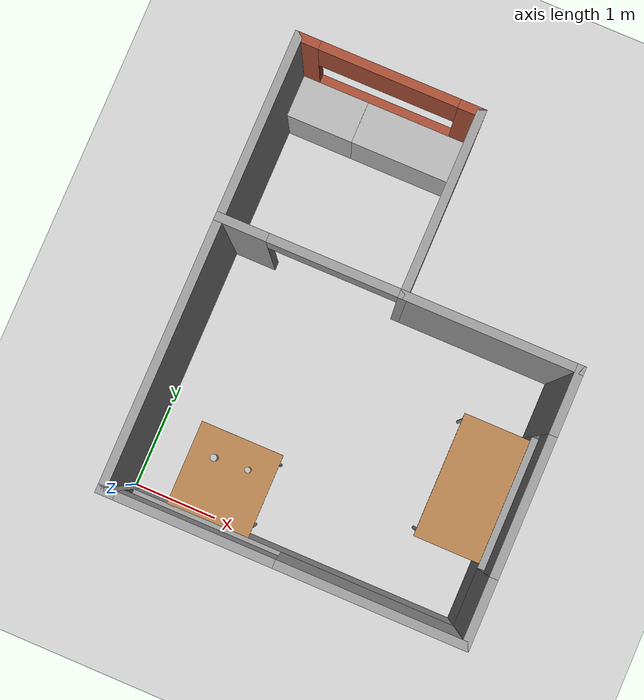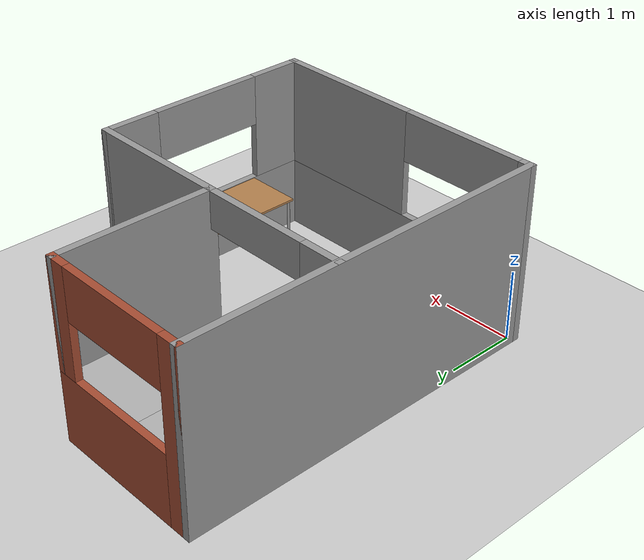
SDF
<sdf version="1.6">
 <world name="default">
  <light name="sun" type="directional">
   <pose>0 0 10 0 -0 0</pose>
   <diffuse>0.8 0.8 0.8 1</diffuse>
   <specular>0.2 0.2 0.2 1</specular>
   <attenuation>
    <range>1000</range>
    <constant>0.9</constant>
    <linear>0.01</linear>
    <quadratic>0.001</quadratic>
   </attenuation>
   <direction>-0.5 0.1 -0.9</direction>
  </light>
  <model name="ground_plane">
   <static>1</static>
   <link name="link">
    <collision name="collision">
     <geometry><plane><normal>0 0 1</normal><size>100 100</size></plane></geometry>
     <surface>
      <contact><collide_bitmask>65535</collide_bitmask></contact>
      <friction><ode><mu>100</mu><mu2>50</mu2></ode></friction>
     </surface>
    </collision>
    <visual name="visual">
     <cast_shadows>0</cast_shadows>
     <geometry><plane><normal>0 0 1</normal><size>100 100</size></plane></geometry>
     <material>
      <script><uri>file://media/materials/scripts/gazebo.material</uri><name>Gazebo/Grey</name></script>
     </material>
    </visual>
   </link>
  </model>
  <gravity>0 0 -9.8</gravity>
  <magnetic_field>6e-06 2.3e-05 -4.2e-05</magnetic_field>
  <atmosphere type="adiabatic"/>
  <physics name="default_physics" default="0" type="ode">
   <max_step_size>0.001</max_step_size>
   <real_time_factor>0</real_time_factor>
   <real_time_update_rate>1000</real_time_update_rate>
  </physics>
  <scene><ambient>0.4 0.4 0.4 1</ambient><background>0.7 0.7 0.7 1</background><shadows>1</shadows></scene>
  <audio><device>default</device></audio>
  <spherical_coordinates>
   <surface_model>EARTH_WGS84</surface_model>
   <latitude_deg>0</latitude_deg>
   <longitude_deg>0</longitude_deg>
   <elevation>0</elevation>
   <heading_deg>0</heading_deg>
  </spherical_coordinates>
  <model name="table">
   <static>1</static>
   <link name="link">
    <collision name="surface">
     <pose>0 0 1 0 -0 0</pose>
     <geometry><box><size>1.5 0.8 0.03</size></box></geometry>
     <surface><friction><ode><mu>0.6</mu><mu2>0.6</mu2></ode></friction></surface>
    </collision>
    <visual name="visual1">
     <pose>0 0 1 0 -0 0</pose>
     <geometry><box><size>1.5 0.8 0.03</size></box></geometry>
     <material>
      <script><uri>file://media/materials/scripts/gazebo.material</uri><name>Gazebo/Wood</name></script>
     </material>
    </visual>
    <collision name="front_left_leg">
     <pose>0.68 0.38 0.5 0 -0 0</pose>
     <geometry><cylinder><radius>0.02</radius><length>1</length></cylinder></geometry>
    </collision>
    <visual name="front_left_leg">
     <pose>0.68 0.38 0.5 0 -0 0</pose>
     <geometry><cylinder><radius>0.02</radius><length>1</length></cylinder></geometry>
     <material>
      <script><uri>file://media/materials/scripts/gazebo.material</uri><name>Gazebo/Grey</name></script>
     </material>
    </visual>
    <collision name="front_right_leg">
     <pose>0.68 -0.38 0.5 0 -0 0</pose>
     <geometry><cylinder><radius>0.02</radius><length>1</length></cylinder></geometry>
    </collision>
    <visual name="front_right_leg">
     <pose>0.68 -0.38 0.5 0 -0 0</pose>
     <geometry><cylinder><radius>0.02</radius><length>1</length></cylinder></geometry>
     <material>
      <script><uri>file://media/materials/scripts/gazebo.material</uri><name>Gazebo/Grey</name></script>
     </material>
    </visual>
    <collision name="back_right_leg">
     <pose>-0.68 -0.38 0.5 0 -0 0</pose>
     <geometry><cylinder><radius>0.02</radius><length>1</length></cylinder></geometry>
    </collision>
    <visual name="back_right_leg">
     <pose>-0.68 -0.38 0.5 0 -0 0</pose>
     <geometry><cylinder><radius>0.02</radius><length>1</length></cylinder></geometry>
     <material>
      <script><uri>file://media/materials/scripts/gazebo.material</uri><name>Gazebo/Grey</name></script>
     </material>
    </visual>
    <collision name="back_left_leg">
     <pose>-0.68 0.38 0.5 0 -0 0</pose>
     <geometry><cylinder><radius>0.02</radius><length>1</length></cylinder></geometry>
    </collision>
    <visual name="back_left_leg">
     <pose>-0.68 0.38 0.5 0 -0 0</pose>
     <geometry><cylinder><radius>0.02</radius><length>1</length></cylinder></geometry>
     <material>
      <script><uri>file://media/materials/scripts/gazebo.material</uri><name>Gazebo/Grey</name></script>
     </material>
    </visual>
   </link>
   <pose>3.6 1.5 -0.025 0 -0 1.5708</pose>
  </model>
  <model name="table_1m">
   <static>1</static>
   <link name="link">
    <collision name="surface">
     <pose>0 0 1.01 0 -0 0</pose>
     <geometry><box><size>1 1.01 0.03</size></box></geometry>
    </collision>
    <visual name="visual1">
     <pose>0 0 1.01 0 -0 0</pose>
     <geometry><box><size>1 1.01 0.03</size></box></geometry>
     <material>
      <script><uri>file://media/materials/scripts/gazebo.material</uri><name>Gazebo/Wood</name></script>
     </material>
    </visual>
    <collision name="front_left_leg">
     <pose>0.48 0.38 0.5005 0 -0 0</pose>
     <geometry><cylinder><radius>0.02</radius><length>1.01</length></cylinder></geometry>
    </collision>
    <visual name="front_left_leg">
     <pose>0.48 0.38 0.5005 0 -0 0</pose>
     <geometry><cylinder><radius>0.02</radius><length>1.01</length></cylinder></geometry>
     <material>
      <script><uri>file://media/materials/scripts/gazebo.material</uri><name>Gazebo/Grey</name></script>
     </material>
    </visual>
    <collision name="front_right_leg">
     <pose>0.48 -0.38 0.5005 0 -0 0</pose>
     <geometry><cylinder><radius>0.02</radius><length>1.01</length></cylinder></geometry>
    </collision>
    <visual name="front_right_leg">
     <pose>0.48 -0.38 0.5005 0 -0 0</pose>
     <geometry><cylinder><radius>0.02</radius><length>1.01</length></cylinder></geometry>
     <material>
      <script><uri>file://media/materials/scripts/gazebo.material</uri><name>Gazebo/Grey</name></script>
     </material>
    </visual>
    <collision name="back_right_leg">
     <pose>-0.48 -0.38 0.5005 0 -0 0</pose>
     <geometry><cylinder><radius>0.02</radius><length>1.01</length></cylinder></geometry>
    </collision>
    <visual name="back_right_leg">
     <pose>-0.48 -0.38 0.5005 0 -0 0</pose>
     <geometry><cylinder><radius>0.02</radius><length>1.01</length></cylinder></geometry>
     <material>
      <script><uri>file://media/materials/scripts/gazebo.material</uri><name>Gazebo/Grey</name></script>
     </material>
    </visual>
    <collision name="back_left_leg">
     <pose>-0.48 0.38 0.5005 0 -0 0</pose>
     <geometry><cylinder><radius>0.02</radius><length>1.01</length></cylinder></geometry>
    </collision>
    <visual name="back_left_leg">
     <pose>-0.48 0.38 0.5005 0 -0 0</pose>
     <geometry><cylinder><radius>0.02</radius><length>1.01</length></cylinder></geometry>
     <material>
      <script><uri>file://media/materials/scripts/gazebo.material</uri><name>Gazebo/Grey</name></script>
     </material>
    </visual>
    <velocity_decay><linear>0</linear><angular>0</angular></velocity_decay>
   </link>
   <pose>1 0.5 -0.025 0 -0 0</pose>
  </model>
  <light name="user_point_light_0" type="point">
   <pose>1.30174 1.84081 1 0 -0 0</pose>
   <diffuse>0.5 0.5 0.5 1</diffuse>
   <specular>0.1 0.1 0.1 1</specular>
   <attenuation>
    <range>20</range>
    <constant>0.5</constant>
    <linear>0.01</linear>
    <quadratic>0.001</quadratic>
   </attenuation>
   <cast_shadows>0</cast_shadows>
   <direction>0 0 -1</direction>
  </light>
  <light name="user_point_light_1" type="point">
   <pose>0.591099 4.29155 1 0 -0 0</pose>
   <diffuse>0.5 0.5 0.5 1</diffuse>
   <specular>0.1 0.1 0.1 1</specular>
   <attenuation>
    <range>20</range>
    <constant>0.5</constant>
    <linear>0.01</linear>
    <quadratic>0.001</quadratic>
   </attenuation>
   <cast_shadows>0</cast_shadows>
   <direction>0 0 -1</direction>
  </light>
  <model name="thesis_world">
   <pose>2 2.55 0 0 -0 0</pose>
   <link name="Wall_0">
    <pose>-0 -2.6 0 0 -0 0</pose>
    <visual name="Wall_0_Visual_0">
     <pose>-2 0 1.25 0 -0 0</pose>
     <geometry><box><size>0.2 0.1 2.5</size></box></geometry>
     <material>
      <script><uri>file://media/materials/scripts/gazebo.material</uri><name>Gazebo/Grey</name></script>
      <ambient>1 1 1 1</ambient>
     </material>
     <meta><layer>0</layer></meta>
    </visual>
    <collision name="Wall_0_Collision_0">
     <geometry><box><size>0.2 0.1 2.5</size></box></geometry>
     <pose>-2 0 1.25 0 -0 0</pose>
    </collision>
    <visual name="Wall_0_Visual_1">
     <pose>0.1 0 0.5 0 -0 0</pose>
     <geometry><box><size>4 0.1 1</size></box></geometry>
     <material>
      <script><uri>file://media/materials/scripts/gazebo.material</uri><name>Gazebo/Grey</name></script>
      <ambient>1 1 1 1</ambient>
     </material>
     <meta><layer>0</layer></meta>
    </visual>
    <collision name="Wall_0_Collision_1">
     <geometry><box><size>4 0.1 1</size></box></geometry>
     <pose>0.1 0 0.5 0 -0 0</pose>
    </collision>
    <visual name="Wall_0_Visual_2">
     <pose>1 0 1.75 0 -0 0</pose>
     <geometry><box><size>2.2 0.1 1.5</size></box></geometry>
     <material>
      <script><uri>file://media/materials/scripts/gazebo.material</uri><name>Gazebo/Grey</name></script>
      <ambient>1 1 1 1</ambient>
     </material>
     <meta><layer>0</layer></meta>
    </visual>
    <collision name="Wall_0_Collision_2">
     <geometry><box><size>2.2 0.1 1.5</size></box></geometry>
     <pose>1 0 1.75 0 -0 0</pose>
    </collision>
    <visual name="Wall_0_Visual_3">
     <pose>-1 0 2.15 0 -0 0</pose>
     <geometry><box><size>1.8 0.1 0.7</size></box></geometry>
     <material>
      <script><uri>file://media/materials/scripts/gazebo.material</uri><name>Gazebo/Grey</name></script>
      <ambient>1 1 1 1</ambient>
     </material>
     <meta><layer>0</layer></meta>
    </visual>
    <collision name="Wall_0_Collision_3">
     <geometry><box><size>1.8 0.1 0.7</size></box></geometry>
     <pose>-1 0 2.15 0 -0 0</pose>
    </collision>
   </link>
   <link name="Wall_11">
    <collision name="Wall_11_Collision">
     <geometry><box><size>2.1 0.1 2.5</size></box></geometry>
     <pose>0 0 1.25 0 -0 0</pose>
    </collision>
    <visual name="Wall_11_Visual">
     <pose>0 0 1.25 0 -0 0</pose>
     <geometry><box><size>2.1 0.1 2.5</size></box></geometry>
     <material>
      <script><uri>file://media/materials/scripts/gazebo.material</uri><name>Gazebo/Grey</name></script>
      <ambient>1 1 1 1</ambient>
     </material>
     <meta><layer>0</layer></meta>
    </visual>
    <pose>1.05 0.5 0 0 -0 0</pose>
   </link>
   <link name="Wall_15">
    <pose>2.05 -1.05 0 0 -0 -1.5708</pose>
    <visual name="Wall_15_Visual_0">
     <pose>-1.2 0 1.25 0 -0 0</pose>
     <geometry><box><size>0.8 0.1 2.5</size></box></geometry>
     <material>
      <script><uri>file://media/materials/scripts/gazebo.material</uri><name>Gazebo/Grey</name></script>
      <ambient>1 1 1 1</ambient>
     </material>
     <meta><layer>0</layer></meta>
    </visual>
    <collision name="Wall_15_Collision_0">
     <geometry><box><size>0.8 0.1 2.5</size></box></geometry>
     <pose>-1.2 0 1.25 0 -0 0</pose>
    </collision>
    <visual name="Wall_15_Visual_1">
     <pose>0.4 0 0.5 0 -0 0</pose>
     <geometry><box><size>2.4 0.1 1</size></box></geometry>
     <material>
      <script><uri>file://media/materials/scripts/gazebo.material</uri><name>Gazebo/Grey</name></script>
      <ambient>1 1 1 1</ambient>
     </material>
     <meta><layer>0</layer></meta>
    </visual>
    <collision name="Wall_15_Collision_1">
     <geometry><box><size>2.4 0.1 1</size></box></geometry>
     <pose>0.4 0 0.5 0 -0 0</pose>
    </collision>
    <visual name="Wall_15_Visual_2">
     <pose>1.2 0 1.75 0 -0 0</pose>
     <geometry><box><size>0.8 0.1 1.5</size></box></geometry>
     <material>
      <script><uri>file://media/materials/scripts/gazebo.material</uri><name>Gazebo/Grey</name></script>
      <ambient>1 1 1 1</ambient>
     </material>
     <meta><layer>0</layer></meta>
    </visual>
    <collision name="Wall_15_Collision_2">
     <geometry><box><size>0.8 0.1 1.5</size></box></geometry>
     <pose>1.2 0 1.75 0 -0 0</pose>
    </collision>
    <visual name="Wall_15_Visual_3">
     <pose>0 0 2.15 0 -0 0</pose>
     <geometry><box><size>1.6 0.1 0.7</size></box></geometry>
     <material>
      <script><uri>file://media/materials/scripts/gazebo.material</uri><name>Gazebo/Grey</name></script>
      <ambient>1 1 1 1</ambient>
     </material>
     <meta><layer>0</layer></meta>
    </visual>
    <collision name="Wall_15_Collision_3">
     <geometry><box><size>1.6 0.1 0.7</size></box></geometry>
     <pose>0 0 2.15 0 -0 0</pose>
    </collision>
   </link>
   <link name="Wall_2">
    <collision name="Wall_2_Collision">
     <geometry><box><size>5.3 0.1 2.5</size></box></geometry>
     <pose>0 0 1.25 0 -0 0</pose>
    </collision>
    <visual name="Wall_2_Visual">
     <pose>0 0 1.25 0 -0 0</pose>
     <geometry><box><size>5.3 0.1 2.5</size></box></geometry>
     <material>
      <script><uri>file://media/materials/scripts/gazebo.material</uri><name>Gazebo/Grey</name></script>
      <ambient>1 1 1 1</ambient>
     </material>
     <meta><layer>0</layer></meta>
    </visual>
    <pose>-2.05 0 0 0 -0 1.5708</pose>
   </link>
   <link name="Wall_4">
    <pose>-1 2.6 0 0 -0 0</pose>
    <visual name="Wall_4_Visual_0">
     <pose>-0.95 0 1.25 0 -0 0</pose>
     <geometry><box><size>0.3 0.1 2.5</size></box></geometry>
     <material>
      <script><uri>file://media/materials/scripts/gazebo.material</uri><name>Gazebo/Bricks</name></script>
      <ambient>1 1 1 1</ambient>
     </material>
     <meta><layer>0</layer></meta>
    </visual>
    <collision name="Wall_4_Collision_0">
     <geometry><box><size>0.3 0.1 2.5</size></box></geometry>
     <pose>-0.95 0 1.25 0 -0 0</pose>
    </collision>
    <visual name="Wall_4_Visual_1">
     <pose>0.15 0 0.5 0 -0 0</pose>
     <geometry><box><size>1.9 0.1 1</size></box></geometry>
     <material>
      <script><uri>file://media/materials/scripts/gazebo.material</uri><name>Gazebo/Bricks</name></script>
      <ambient>1 1 1 1</ambient>
     </material>
     <meta><layer>0</layer></meta>
    </visual>
    <collision name="Wall_4_Collision_1">
     <geometry><box><size>1.9 0.1 1</size></box></geometry>
     <pose>0.15 0 0.5 0 -0 0</pose>
    </collision>
    <visual name="Wall_4_Visual_2">
     <pose>0.95 0 1.75 0 -0 0</pose>
     <geometry><box><size>0.3 0.1 1.5</size></box></geometry>
     <material>
      <script><uri>file://media/materials/scripts/gazebo.material</uri><name>Gazebo/Bricks</name></script>
      <ambient>1 1 1 1</ambient>
     </material>
     <meta><layer>0</layer></meta>
    </visual>
    <collision name="Wall_4_Collision_2">
     <geometry><box><size>0.3 0.1 1.5</size></box></geometry>
     <pose>0.95 0 1.75 0 -0 0</pose>
    </collision>
    <visual name="Wall_4_Visual_3">
     <pose>0 0 2.15 0 -0 0</pose>
     <geometry><box><size>1.6 0.1 0.7</size></box></geometry>
     <material>
      <script><uri>file://media/materials/scripts/gazebo.material</uri><name>Gazebo/Bricks</name></script>
      <ambient>1 1 1 1</ambient>
     </material>
     <meta><layer>0</layer></meta>
    </visual>
    <collision name="Wall_4_Collision_3">
     <geometry><box><size>1.6 0.1 0.7</size></box></geometry>
     <pose>0 0 2.15 0 -0 0</pose>
    </collision>
   </link>
   <link name="Wall_6">
    <collision name="Wall_6_Collision">
     <geometry><box><size>2.2 0.1 2.5</size></box></geometry>
     <pose>0 0 1.25 0 -0 0</pose>
    </collision>
    <visual name="Wall_6_Visual">
     <pose>0 0 1.25 0 -0 0</pose>
     <geometry><box><size>2.2 0.1 2.5</size></box></geometry>
     <material>
      <script><uri>file://media/materials/scripts/gazebo.material</uri><name>Gazebo/Grey</name></script>
      <ambient>1 1 1 1</ambient>
     </material>
     <meta><layer>0</layer></meta>
    </visual>
    <pose>0.05 1.55 0 0 -0 -1.5708</pose>
   </link>
   <link name="Wall_8">
    <pose>-1 0.5 0 0 -0 3.14159</pose>
    <visual name="Wall_8_Visual_0">
     <pose>-1.05 0 1.25 0 -0 0</pose>
     <geometry><box><size>0.1 0.1 2.5</size></box></geometry>
     <material>
      <script><uri>file://media/materials/scripts/gazebo.material</uri><name>Gazebo/Grey</name></script>
      <ambient>1 1 1 1</ambient>
     </material>
     <meta><layer>0</layer></meta>
    </visual>
    <collision name="Wall_8_Collision_0">
     <geometry><box><size>0.1 0.1 2.5</size></box></geometry>
     <pose>-1.05 0 1.25 0 -0 0</pose>
    </collision>
    <visual name="Wall_8_Visual_1">
     <pose>0.8 0 1.25 0 -0 0</pose>
     <geometry><box><size>0.6 0.1 2.5</size></box></geometry>
     <material>
      <script><uri>file://media/materials/scripts/gazebo.material</uri><name>Gazebo/Grey</name></script>
      <ambient>1 1 1 1</ambient>
     </material>
     <meta><layer>0</layer></meta>
    </visual>
    <collision name="Wall_8_Collision_1">
     <geometry><box><size>0.6 0.1 2.5</size></box></geometry>
     <pose>0.8 0 1.25 0 -0 0</pose>
    </collision>
    <visual name="Wall_8_Visual_2">
     <pose>-0.25 0 2.25 0 -0 0</pose>
     <geometry><box><size>1.5 0.1 0.5</size></box></geometry>
     <material>
      <script><uri>file://media/materials/scripts/gazebo.material</uri><name>Gazebo/Grey</name></script>
      <ambient>1 1 1 1</ambient>
     </material>
     <meta><layer>0</layer></meta>
    </visual>
    <collision name="Wall_8_Collision_2">
     <geometry><box><size>1.5 0.1 0.5</size></box></geometry>
     <pose>-0.25 0 2.25 0 -0 0</pose>
    </collision>
   </link>
   <static>1</static>
  </model>
  <model name="sink">
   <link name="link">
    <inertial>
     <mass>1</mass>
     <inertia>
      <ixx>0.166667</ixx>
      <ixy>0</ixy>
      <ixz>0</ixz>
      <iyy>0.166667</iyy>
      <iyz>0</iyz>
      <izz>0.166667</izz>
     </inertia>
    </inertial>
    <visual name="visual">
     <geometry><box><size>0.8 0.5 1</size></box></geometry>
     <material>
      <script>
       <uri>model://sink/materials/scripts</uri>
       <uri>model://sink/materials/textures</uri>
       <name>sinkMat/Diffuse</name>
      </script>
      <shader type="vertex"><normal_map>__default__</normal_map></shader>
      <ambient>0.3 0.3 0.3 1</ambient>
      <diffuse>0.7 0.7 0.7 1</diffuse>
      <specular>0.01 0.01 0.01 1</specular>
      <emissive>0 0 0 1</emissive>
     </material>
    </visual>
    <collision name="collision">
     <geometry><box><size>0.8 0.5 1</size></box></geometry>
     <surface>
      <friction>
       <ode><mu>1</mu><mu2>1</mu2><fdir1>0 0 0</fdir1><slip1>0</slip1><slip2>0</slip2></ode>
       <torsional>
        <coefficient>1</coefficient>
        <patch_radius>0</patch_radius>
        <surface_radius>0</surface_radius>
        <use_patch_radius>1</use_patch_radius>
        <ode><slip>0</slip></ode>
       </torsional>
      </friction>
      <bounce><restitution_coefficient>0</restitution_coefficient><threshold>1e+06</threshold></bounce>
      <contact>
       <collide_without_contact>0</collide_without_contact>
       <collide_without_contact_bitmask>1</collide_without_contact_bitmask>
       <collide_bitmask>1</collide_bitmask>
       <ode>
        <soft_cfm>0</soft_cfm>
        <soft_erp>0.2</soft_erp>
        <kp>1e+13</kp>
        <kd>1</kd>
        <max_vel>0.01</max_vel>
        <min_depth>0</min_depth>
       </ode>
       <bullet>
        <split_impulse>1</split_impulse>
        <split_impulse_penetration_threshold>-0.01</split_impulse_penetration_threshold>
        <soft_cfm>0</soft_cfm>
        <soft_erp>0.2</soft_erp>
        <kp>1e+13</kp>
        <kd>1</kd>
       </bullet>
      </contact>
     </surface>
    </collision>
   </link>
   <static>1</static>
   <pose>0.405273 4.85028 0.5 0 -0 0</pose>
  </model>
  <model name="counter">
   <link name="link">
    <inertial>
     <mass>1</mass>
     <inertia>
      <ixx>0.166667</ixx>
      <ixy>0</ixy>
      <ixz>0</ixz>
      <iyy>0.166667</iyy>
      <iyz>0</iyz>
      <izz>0.166667</izz>
     </inertia>
    </inertial>
    <visual name="visual">
     <geometry><box><size>1.19 0.5 1</size></box></geometry>
     <material>
      <script>
       <uri>model://counter/materials/scripts</uri>
       <uri>model://counter/materials/textures</uri>
       <name>counterMat/Diffuse</name>
      </script>
      <shader type="vertex"><normal_map>__default__</normal_map></shader>
      <ambient>0.3 0.3 0.3 1</ambient>
      <diffuse>0.7 0.7 0.7 1</diffuse>
      <specular>0.01 0.01 0.01 1</specular>
      <emissive>0 0 0 1</emissive>
     </material>
    </visual>
    <collision name="collision">
     <geometry><box><size>1.19 0.5 1</size></box></geometry>
     <surface>
      <friction>
       <ode><mu>1</mu><mu2>1</mu2><fdir1>0 0 0</fdir1><slip1>0</slip1><slip2>0</slip2></ode>
       <torsional>
        <coefficient>1</coefficient>
        <patch_radius>0</patch_radius>
        <surface_radius>0</surface_radius>
        <use_patch_radius>1</use_patch_radius>
        <ode><slip>0</slip></ode>
       </torsional>
      </friction>
      <bounce><restitution_coefficient>0</restitution_coefficient><threshold>1e+06</threshold></bounce>
      <contact>
       <collide_without_contact>0</collide_without_contact>
       <collide_without_contact_bitmask>1</collide_without_contact_bitmask>
       <collide_bitmask>1</collide_bitmask>
       <ode>
        <soft_cfm>0</soft_cfm>
        <soft_erp>0.2</soft_erp>
        <kp>1e+13</kp>
        <kd>1</kd>
        <max_vel>0.01</max_vel>
        <min_depth>0</min_depth>
       </ode>
       <bullet>
        <split_impulse>1</split_impulse>
        <split_impulse_penetration_threshold>-0.01</split_impulse_penetration_threshold>
        <soft_cfm>0</soft_cfm>
        <soft_erp>0.2</soft_erp>
        <kp>1e+13</kp>
        <kd>1</kd>
       </bullet>
      </contact>
     </surface>
    </collision>
   </link>
   <static>1</static>
   <pose>1.40051 4.85028 0.5 0 -0 0</pose>
  </model>
  <model name="biscuits_pack">
   <static>0</static>
   <link name="link">
    <inertial>
     <mass>0.09</mass>
     <inertia><ixx>0</ixx><ixy>0</ixy><ixz>0</ixz><iyy>0</iyy><iyz>0</iyz><izz>0</izz></inertia>
    </inertial>
    <collision name="collision">
     <geometry><cylinder><radius>0.035</radius><length>0.15</length></cylinder></geometry>
     <surface>
      <friction><ode><mu>1.0</mu><mu2>1.0</mu2></ode></friction>
      <contact><ode><max_vel>0</max_vel><min_depth>0.01</min_depth></ode></contact>
     </surface>
    </collision>
    <visual name="visual">
     <geometry><cylinder><radius>0.035</radius><length>0.15</length></cylinder></geometry>
     <material>
      <script>
       <uri>model://biscuits_pack/material/scripts</uri>
       <uri>model://biscuits_pack/material/textures</uri>
       <name>Custom/biscuits_pack</name>
      </script>
     </material>
    </visual>
    <velocity_decay><linear>0</linear><angular>0</angular></velocity_decay>
   </link>
   <pose>1.2 0.700003 1.075 -3.4e-05 5.7e-05 0</pose>
  </model>
  <model name="pringles">
   <static>0</static>
   <link name="link">
    <inertial>
     <mass>0.1</mass>
     <inertia><ixx>0</ixx><ixy>0</ixy><ixz>0</ixz><iyy>0</iyy><iyz>0</iyz><izz>0</izz></inertia>
    </inertial>
    <collision name="collision">
     <geometry><cylinder><radius>0.04</radius><length>0.235</length></cylinder></geometry>
     <surface>
      <friction><ode><mu>1.0</mu><mu2>1.0</mu2></ode></friction>
      <contact><ode><max_vel>0</max_vel><min_depth>0.01</min_depth></ode></contact>
     </surface>
    </collision>
    <visual name="visual">
     <geometry><cylinder><radius>0.04</radius><length>0.235</length></cylinder></geometry>
     <material>
      <script>
       <uri>model://pringles/material/scripts</uri>
       <uri>model://pringles/material/textures</uri>
       <name>Custom/pringles</name>
      </script>
     </material>
    </visual>
    <velocity_decay><linear>0</linear><angular>0</angular></velocity_decay>
   </link>
   <pose>0.799985 0.680009 1.1175 -7.8e-05 -0.00013 -1e-06</pose>
  </model>
 </world>
</sdf>
